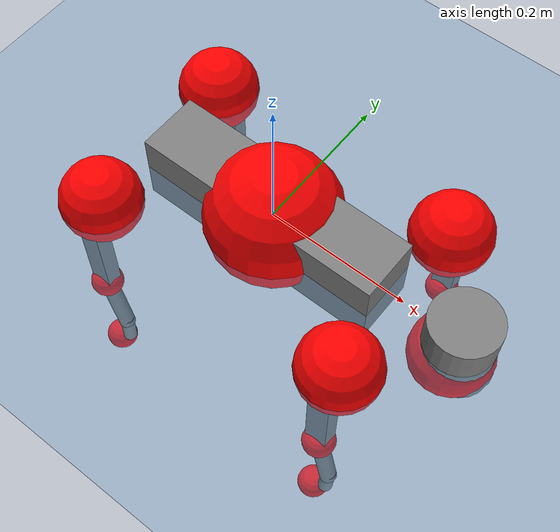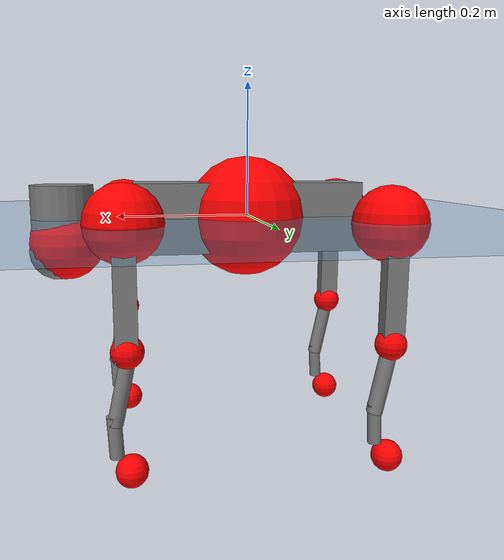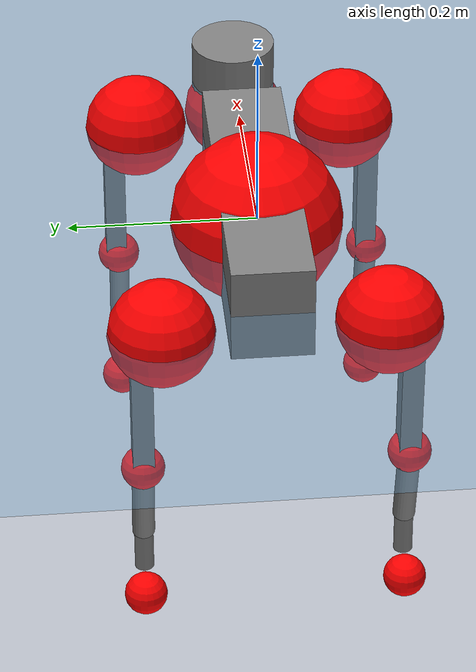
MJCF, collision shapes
<mujoco model="go2">
  <compiler angle="radian" assetdir="assets" balanceinertia="true" inertiafromgeom="false"/>

  <option timestep="0.005" density="1.2" viscosity="2e-05"/>

  <size nkey="1"/>

  <visual>
    <quality shadowsize="8192"/>
    <map shadowclip="0.5"/>
  </visual>

  <default>
    <default class="/">
      <geom contype="0" conaffinity="0" group="1" solref="-1000 -80"/>
      <site size="0.01 0.005 0.005" group="5"/>
      <general forcelimited="true" biastype="affine" gainprm="20" biasprm="0 -20 -0.5"/>
      <default class="go2">
        <joint armature="0.01" damping="0.01" frictionloss="0.2"/>
        <geom condim="1" margin="0.001"/>
        <default class="visual">
          <geom type="mesh" group="2"/>
        </default>
        <default class="collision">
          <geom group="3"/>
          <default class="foot">
            <geom size="0.022 0 0" condim="6" priority="1" friction="0.8 0.02 0.01" solimp="0.015 1 0.022"/>
          </default>
        </default>
        <default class="reward_collision_sphere">
          <geom group="5" rgba="1 0 0 1"/>
        </default>
      </default>
    </default>
  </default>

  <asset>
    <texture type="skybox" colorspace="auto" name="//unnamed_texture_0" builtin="gradient" rgb1="0.95 0.95 0.95" rgb2="0.95 0.95 0.95" width="100" height="600"/>
    <texture type="2d" colorspace="auto" name="texplane" builtin="checker" rgb1="0.345 0.575 0.748" rgb2="0.345 0.575 0.748" markrgb="1 1 1" width="512" height="512"/>
    <material name="MatPlane" class="/" texture="texplane" texuniform="true" texrepeat="2 2" specular="0.9"/>
    <material name="metal" class="/" rgba="0.9 0.95 0.95 1"/>
    <material name="black" class="/" rgba="0 0 0 1"/>
    <material name="white" class="/"/>
    <material name="gray" class="/" rgba="0.671705 0.692426 0.77427 1"/>
    <mesh name="base_0" class="/" file="base_0.obj"/>
    <mesh name="base_1" class="/" file="base_1.obj"/>
    <mesh name="base_2" class="/" file="base_2.obj"/>
    <mesh name="base_3" class="/" file="base_3.obj"/>
    <mesh name="base_4" class="/" file="base_4.obj"/>
    <mesh name="hip_0" class="/" file="hip_0.obj"/>
    <mesh name="hip_1" class="/" file="hip_1.obj"/>
    <mesh name="thigh_0" class="/" file="thigh_0.obj"/>
    <mesh name="thigh_1" class="/" file="thigh_1.obj"/>
    <mesh name="thigh_mirror_0" class="/" file="thigh_mirror_0.obj"/>
    <mesh name="thigh_mirror_1" class="/" file="thigh_mirror_1.obj"/>
    <mesh name="calf_0" class="/" file="calf_0.obj"/>
    <mesh name="calf_1" class="/" file="calf_1.obj"/>
    <mesh name="calf_mirror_0" class="/" file="calf_mirror_0.obj"/>
    <mesh name="calf_mirror_1" class="/" file="calf_mirror_1.obj"/>
    <mesh name="foot" class="/" file="foot.obj"/>
  </asset>

  <worldbody>
    <geom name="floor" class="/" size="100 100 0.125" type="plane" group="0" material="MatPlane"/>
    <light name="toplight_shadow" class="/" pos="0 0 5" dir="0.0990148 0.0990148 -0.990148" type="directional" ambient="0.04 0.04 0.04" diffuse="0.55 0.55 0.55" specular="0.12 0.12 0.12"/>
    <light name="toplight_fill" class="/" pos="0 0 5" dir="0.0990148 0.0990148 -0.990148" type="directional" castshadow="false" ambient="0.04 0.04 0.04" diffuse="0.3 0.3 0.3" specular="0.08 0.08 0.08"/>
    <body name="trunk" childclass="go2" pos="0.0022507 0.000319646 -0.0014397" quat="0.999999 -0.000728318 -0.000730276 -0.000810751">
      <inertial pos="0.0179077 0.00137633 -0.00349001" quat="0.00151119 0.712928 0.00294418 0.701229" mass="5.31" diaginertia="0.0943055 0.0894561 0.00858639"/>
      <joint name="//unnamed_joint_0" type="free" armature="0" damping="0" frictionloss="0"/>
      <geom name="//unnamed_geom_1" class="visual" material="black" mesh="base_0"/>
      <geom name="//unnamed_geom_2" class="visual" material="black" mesh="base_1"/>
      <geom name="//unnamed_geom_3" class="visual" material="black" mesh="base_2"/>
      <geom name="//unnamed_geom_4" class="visual" material="white" mesh="base_3"/>
      <geom name="//unnamed_geom_5" class="visual" material="gray" mesh="base_4"/>
      <geom name="trunk_1" class="collision" size="0.173246 0.0430581 0.0524986" type="box"/>
      <geom name="trunk_2" class="collision" size="0.0460514 0.0414463" pos="0.277542 0 0.00809136" type="cylinder"/>
      <geom name="trunk_3" class="collision" size="0.0432884" pos="0.285333 0 -0.0485481"/>
      <geom name="//unnamed_geom_9" class="reward_collision_sphere" size="0.0921029"/>
      <geom name="//unnamed_geom_10" class="reward_collision_sphere" size="0.0552617" pos="0.272673 0 -0.0364111"/>
      <site name="imu" pos="-0.022292 0.00963207 0.0477262" size="0.00921029"/>
      <camera name="track" pos="0 -1.96024 0" quat="0.707107 0.707107 0 0" mode="trackcom"/>
      <camera name="ego_camera" pos="0.303836 0 0.0364111" quat="-0.5 -0.5 0.5 0.5"/>
      <body name="FL_hip" pos="0.188111 0.0471445 0.00262884" quat="1 0.000261078 0.000396016 0.000209152">
        <inertial pos="-0.00592619 -0.00044904 0.0012361" quat="0.494354 0.499031 0.508165 0.498348" mass="0.514787" diaginertia="0.000787386 0.000545138 0.000166676"/>
        <joint name="FL_hip_joint" pos="0 0 0" axis="0.99994 0.0102284 -0.00383326" range="-1.00111 1.06762" armature="0.00907766" damping="0.0170175" frictionloss="0.181177"/>
        <geom name="//unnamed_geom_11" class="visual" material="metal" mesh="hip_0"/>
        <geom name="//unnamed_geom_12" class="visual" material="gray" mesh="hip_1"/>
        <geom name="//unnamed_geom_13" class="collision" size="0.0423673 0.0184206" pos="0 0.0784095 0" quat="0.707107 0.707107 0 0" type="cylinder"/>
        <geom name="//unnamed_geom_14" class="reward_collision_sphere" size="0.0552617" pos="0 0.0686084 0"/>
        <body name="FL_thigh" pos="0.000343951 0.0941851 0.00294284" quat="0.999999 0.000466536 0.000343526 0.00117287">
          <inertial pos="-0.00141554 -0.0240742 -0.029025" quat="0.829549 0.0848013 -0.0200935 0.551592" mass="0.871533" diaginertia="0.00513661 0.00508295 0.000302364"/>
          <joint name="FL_thigh_joint" pos="0 0 0" axis="-0.00351756 0.99999 0.00265684" range="-1.53769 3.48772" armature="0.00884113" damping="0.0140656" frictionloss="0.180706"/>
          <geom name="//unnamed_geom_15" class="visual" material="metal" mesh="thigh_0"/>
          <geom name="//unnamed_geom_16" class="visual" material="gray" mesh="thigh_1"/>
          <geom name="//unnamed_geom_17" class="collision" size="0.0980896 0.0112826 0.0156575" pos="0 0 -0.0861729" quat="0.707107 0 0.707107 0" type="box"/>
          <body name="FL_calf" pos="-0.000932826 -0.00283926 -0.172312" quat="0.999999 -0.00111367 -2.60805e-06 -0.000247504">
            <inertial pos="0.00340669 -0.000479798 -0.111305" quat="0.710375 0.00499137 -0.00313604 0.703798" mass="0.188251" diaginertia="0.00130348 0.0013997 1.88913e-05"/>
            <joint name="FL_calf_joint" pos="0 0 0" axis="0.0140935 0.999874 0.00734631" stiffness="0.0122538" range="-2.7765 -0.844649" armature="0.0099196" damping="0" frictionloss="0.200983"/>
            <geom name="//unnamed_geom_18" class="visual" material="gray" mesh="calf_0"/>
            <geom name="//unnamed_geom_19" class="visual" material="black" mesh="calf_1"/>
            <geom name="FL_calf0" class="collision" size="0.0110523 0.0552617" pos="0.00779065 0 -0.0485481" quat="0.994493 0 -0.104807 0" type="cylinder"/>
            <geom name="//unnamed_geom_21" class="collision" size="0.0101313 0.0299334" pos="0.0194766 0 -0.119752" quat="0.999688 0 0.0249974 0" type="cylinder"/>
            <geom name="//unnamed_geom_22" class="visual" pos="0 0 -0.172346" quat="1 0 0 0" material="black" mesh="foot"/>
            <geom name="FL_foot" class="foot" size="0.0180167" pos="-0.00194766 0 -0.172346"/>
            <geom name="//unnamed_geom_24" class="reward_collision_sphere" size="0.0230257"/>
            <geom name="//unnamed_geom_25" class="reward_collision_sphere" size="0.0230257" pos="-0.00194766 0 -0.172346"/>
            <site name="FL_foot" class="foot" pos="-0.00194766 0 -0.172346" size="0.00921029"/>
          </body>
        </body>
      </body>
      <body name="FR_hip" pos="0.187971 -0.0459235 -0.00177008" quat="0.999999 -0.000564608 -0.00108094 -0.00032836">
        <inertial pos="-0.00311321 -0.00462616 4.44756e-05" quat="0.500262 0.510626 0.503709 0.485052" mass="0.52434" diaginertia="0.000729113 0.000525806 0.000157358"/>
        <joint name="FR_hip_joint" pos="0 0 0" axis="0.999922 -0.00887657 0.00878446" range="-1.04379 1.05219" armature="0.0091292" damping="0.00856225" frictionloss="0.15872"/>
        <geom name="//unnamed_geom_26" class="visual" pos="0 1.48954e-09 6.38894e-08" quat="4.63268e-05 1 0 0" material="metal" mesh="hip_0"/>
        <geom name="//unnamed_geom_27" class="visual" pos="0 2.41472e-09 -1.58023e-07" quat="4.63268e-05 1 0 0" material="gray" mesh="hip_1"/>
        <geom name="//unnamed_geom_28" class="collision" size="0.0423673 0.0184206" pos="0 -0.0784095 0" quat="0.707107 0.707107 0 0" type="cylinder"/>
        <geom name="//unnamed_geom_29" class="reward_collision_sphere" size="0.0552617" pos="0 -0.0686084 0"/>
        <body name="FR_thigh" pos="0.000189227 -0.0957939 0.000582291" quat="1 3.27008e-05 1.94535e-06 5.69424e-05">
          <inertial pos="-0.00130122 0.0192702 -0.0257659" quat="0.542846 -0.0148749 0.088578 0.835015" mass="0.908535" diaginertia="0.00515281 0.00517538 0.000309383"/>
          <joint name="FR_thigh_joint" pos="0 0 0" axis="-0.00341087 -0.999985 0.00438556" range="-3.47033 1.62401" armature="0.00914521" damping="0.0117693" frictionloss="0.195647"/>
          <geom name="//unnamed_geom_30" class="visual" material="metal" mesh="thigh_mirror_0"/>
          <geom name="//unnamed_geom_31" class="visual" material="gray" mesh="thigh_mirror_1"/>
          <geom name="//unnamed_geom_32" class="collision" size="0.0980896 0.0112826 0.0156575" pos="0 0 -0.0861729" quat="0.707107 0 0.707107 0" type="box"/>
          <body name="FR_calf" pos="0.0011974 -0.0030597 -0.17282" quat="1 3.60662e-06 5.97994e-05 -8.19277e-05">
            <inertial pos="0.00629676 0.000409772 -0.114106" quat="0.696075 -0.010477 -0.00495961 0.717876" mass="0.18852" diaginertia="0.00130645 0.00132657 1.78549e-05"/>
            <joint name="FR_calf_joint" pos="0 0 0" axis="-0.0122135 -0.999913 0.00489725" range="0.831788 2.77403" armature="0.0091155" damping="0.0263412" frictionloss="0.176198"/>
            <geom name="//unnamed_geom_33" class="visual" material="gray" mesh="calf_mirror_0"/>
            <geom name="//unnamed_geom_34" class="visual" material="black" mesh="calf_mirror_1"/>
            <geom name="FR_calf0" class="collision" size="0.0119734 0.0552617" pos="0.00973832 0 -0.0485481" quat="0.995004 0 -0.0998334 0" type="cylinder"/>
            <geom name="//unnamed_geom_36" class="collision" size="0.0101313 0.0299334" pos="0.0194766 0 -0.119752" quat="0.999688 0 0.0249974 0" type="cylinder"/>
            <geom name="//unnamed_geom_37" class="visual" pos="0 0 -0.172346" quat="1 0 0 0" material="black" mesh="foot"/>
            <geom name="FR_foot" class="foot" size="0.0214536" pos="-0.00194766 0 -0.172346"/>
            <geom name="//unnamed_geom_39" class="reward_collision_sphere" size="0.0230257"/>
            <geom name="//unnamed_geom_40" class="reward_collision_sphere" size="0.0230257" pos="-0.00194766 0 -0.172346"/>
            <site name="FR_foot" class="foot" pos="-0.00194766 0 -0.172346" size="0.00921029"/>
          </body>
        </body>
      </body>
      <body name="RL_hip" pos="-0.188333 0.0458498 -0.00298321" quat="1 0.000114621 5.68355e-05 -0.000126565">
        <inertial pos="0.00571068 0.00469493 -0.00252097" quat="0.506509 0.497462 0.489332 0.506493" mass="0.540691" diaginertia="0.000759778 0.000529701 0.000170138"/>
        <joint name="RL_hip_joint" pos="0 0 0" axis="-0.999865 -0.00667332 0.0150021" stiffness="0.0117748" range="-1.02935 1.00104" armature="0.00802855" damping="0.00485075" frictionloss="0.20934"/>
        <geom name="//unnamed_geom_41" class="visual" pos="-1.43477e-09 0 -2.81247e-07" quat="4.63268e-05 0 1 0" material="metal" mesh="hip_0"/>
        <geom name="//unnamed_geom_42" class="visual" pos="-2.32593e-09 0 -2.49426e-07" quat="4.63268e-05 0 1 0" material="gray" mesh="hip_1"/>
        <geom name="//unnamed_geom_43" class="collision" size="0.0423673 0.0184206" pos="0 0.0784095 0" quat="0.707107 0.707107 0 0" type="cylinder"/>
        <geom name="//unnamed_geom_44" class="reward_collision_sphere" size="0.0552617" pos="0 0.0686084 0"/>
        <body name="RL_thigh" pos="7.61395e-05 0.0900393 0.00220644" quat="1 -2.6089e-05 0.000416197 -0.000152509">
          <inertial pos="-0.00352549 -0.0213234 -0.0274896" quat="0.828704 0.08434 -0.0187693 0.552977" mass="0.92344" diaginertia="0.00519681 0.0051863 0.000312511"/>
          <joint name="RL_thigh_joint" pos="0 0 0" axis="0.004364 0.999895 0.0138323" stiffness="0.0121207" range="-0.524956 4.54364" armature="0.010411" damping="0" frictionloss="0.183955"/>
          <geom name="//unnamed_geom_45" class="visual" material="metal" mesh="thigh_0"/>
          <geom name="//unnamed_geom_46" class="visual" material="gray" mesh="thigh_1"/>
          <geom name="//unnamed_geom_47" class="collision" size="0.0980896 0.0112826 0.0156575" pos="0 0 -0.0861729" quat="0.707107 0 0.707107 0" type="box"/>
          <body name="RL_calf" pos="0.000262643 0.000278647 -0.174994" quat="1 0.000211154 0.000173838 -0.000201559">
            <inertial pos="0.00569253 0.00191926 -0.114338" quat="0.710757 0.0101807 -0.00731489 0.703326" mass="0.188852" diaginertia="0.00127685 0.00132607 1.79376e-05"/>
            <joint name="RL_calf_joint" pos="0 0 0" axis="-0.00115377 0.999999 3.78886e-05" range="-2.72451 -0.810088" armature="0.010068" damping="0" frictionloss="0.206918"/>
            <geom name="//unnamed_geom_48" class="visual" material="gray" mesh="calf_0"/>
            <geom name="//unnamed_geom_49" class="visual" material="black" mesh="calf_1"/>
            <geom name="RL_calf0" class="collision" size="0.0119734 0.0552617" pos="0.00973832 0 -0.0485481" quat="0.995004 0 -0.0998334 0" type="cylinder"/>
            <geom name="//unnamed_geom_51" class="collision" size="0.0101313 0.0299334" pos="0.0194766 0 -0.119752" quat="0.999688 0 0.0249974 0" type="cylinder"/>
            <geom name="//unnamed_geom_52" class="visual" pos="0 0 -0.172346" quat="1 0 0 0" material="black" mesh="foot"/>
            <geom name="RL_foot" class="foot" size="0.0166587" pos="-0.00194766 0 -0.172346"/>
            <geom name="//unnamed_geom_54" class="reward_collision_sphere" size="0.0230257"/>
            <geom name="//unnamed_geom_55" class="reward_collision_sphere" size="0.0230257" pos="-0.00194766 0 -0.172346"/>
            <site name="RL_foot" class="foot" pos="-0.00194766 0 -0.172346" size="0.00921029"/>
          </body>
        </body>
      </body>
      <body name="RR_hip" pos="-0.187764 -0.0479355 -0.0020019" quat="0.999999 -0.000219218 -0.000999679 5.6323e-05">
        <inertial pos="0.0076885 0.00095767 -0.00274923" quat="0.500093 0.504036 0.487688 0.507952" mass="0.52888" diaginertia="0.000765701 0.000534224 0.000167003"/>
        <joint name="RR_hip_joint" pos="0 0 0" axis="-0.999923 0.00188706 -0.0122647" stiffness="0.00838444" range="-1.03336 1.02796" armature="0.00849557" damping="0.0103735" frictionloss="0.17479"/>
        <geom name="//unnamed_geom_56" class="visual" pos="1.43498e-09 1.48954e-09 -3.45137e-07" quat="2.14617e-09 4.63268e-05 4.63268e-05 -1" material="metal" mesh="hip_0"/>
        <geom name="//unnamed_geom_57" class="visual" pos="2.32539e-09 2.41472e-09 -9.14032e-08" quat="2.14617e-09 4.63268e-05 4.63268e-05 -1" material="gray" mesh="hip_1"/>
        <geom name="//unnamed_geom_58" class="collision" size="0.0423673 0.0184206" pos="0 -0.0784095 0" quat="0.707107 0.707107 0 0" type="cylinder"/>
        <geom name="//unnamed_geom_59" class="reward_collision_sphere" size="0.0552617" pos="0 -0.0686084 0"/>
        <body name="RR_thigh" pos="0.00102643 -0.0933588 -0.00182172" quat="1 2.19859e-05 -2.28629e-06 -2.39216e-05">
          <inertial pos="-0.00234039 0.0219844 -0.0265575" quat="0.551738 -0.0214841 0.0863358 0.829259" mass="0.867183" diaginertia="0.00527071 0.00543431 0.00030314"/>
          <joint name="RR_thigh_joint" pos="0 0 0" axis="-0.00687689 -0.999957 0.00619382" stiffness="0.00366855" range="-4.54206 0.579082" armature="0.00954582" damping="0.00946335" frictionloss="0.174993"/>
          <geom name="//unnamed_geom_60" class="visual" material="metal" mesh="thigh_mirror_0"/>
          <geom name="//unnamed_geom_61" class="visual" material="gray" mesh="thigh_mirror_1"/>
          <geom name="//unnamed_geom_62" class="collision" size="0.0980896 0.0112826 0.0156575" pos="0 0 -0.0861729" quat="0.707107 0 0.707107 0" type="box"/>
          <body name="RR_calf" pos="-0.000117073 -0.00154133 -0.171383" quat="1 1.42782e-05 -1.80758e-05 0.000134939">
            <inertial pos="0.00327841 -0.000430282 -0.115102" quat="0.7059 -0.00236959 0.0102017 0.708234" mass="0.190149" diaginertia="0.00132056 0.00133777 1.91491e-05"/>
            <joint name="RR_calf_joint" pos="0 0 0" axis="0.0180796 -0.999816 -0.00640681" stiffness="0.00178203" range="0.840023 2.72087" armature="0.00939934" damping="0.0246069" frictionloss="0.1877"/>
            <geom name="//unnamed_geom_63" class="visual" material="gray" mesh="calf_mirror_0"/>
            <geom name="//unnamed_geom_64" class="visual" material="black" mesh="calf_mirror_1"/>
            <geom name="RR_calf0" class="collision" size="0.0119734 0.0552617" pos="0.00973832 0 -0.0485481" quat="0.995004 0 -0.0998334 0" type="cylinder"/>
            <geom name="//unnamed_geom_66" class="collision" size="0.0101313 0.0299334" pos="0.0194766 0 -0.119752" quat="0.999688 0 0.0249974 0" type="cylinder"/>
            <geom name="//unnamed_geom_67" class="visual" pos="0 0 -0.172346" quat="1 0 0 0" material="black" mesh="foot"/>
            <geom name="RR_foot" class="foot" size="0.019968" pos="-0.00194766 0 -0.172346"/>
            <geom name="//unnamed_geom_69" class="reward_collision_sphere" size="0.0230257"/>
            <geom name="//unnamed_geom_70" class="reward_collision_sphere" size="0.0230257" pos="-0.00194766 0 -0.172346"/>
            <site name="RR_foot" class="foot" pos="-0.00194766 0 -0.172346" size="0.00921029"/>
          </body>
        </body>
      </body>
    </body>
  </worldbody>

  <contact>
    <pair class="/" geom1="floor" geom2="FL_foot" name="//unnamed_contact_0"/>
    <pair class="/" geom1="floor" geom2="FR_foot" name="//unnamed_contact_1"/>
    <pair class="/" geom1="floor" geom2="RL_foot" name="//unnamed_contact_2"/>
    <pair class="/" geom1="floor" geom2="RR_foot" name="//unnamed_contact_3"/>
  </contact>

  <actuator>
    <general name="FL_hip" class="/" joint="FL_hip_joint" forcerange="-21.7356 21.7356" gainprm="19.5078" biasprm="0 -19.5078 -0.431373"/>
    <general name="FL_thigh" class="/" joint="FL_thigh_joint" forcerange="-20.3825 20.3825" gainprm="19.5078" biasprm="0 -19.5078 -0.431373"/>
    <general name="FL_calf" class="/" joint="FL_calf_joint" forcerange="-43.346 43.346" gainprm="19.5078" biasprm="0 -19.5078 -0.431373"/>
    <general name="FR_hip" class="/" joint="FR_hip_joint" forcerange="-21.492 21.492" gainprm="19.5078" biasprm="0 -19.5078 -0.431373"/>
    <general name="FR_thigh" class="/" joint="FR_thigh_joint" forcerange="-23.2871 23.2871" gainprm="19.5078" biasprm="0 -19.5078 -0.431373"/>
    <general name="FR_calf" class="/" joint="FR_calf_joint" forcerange="-40.6287 40.6287" gainprm="19.5078" biasprm="0 -19.5078 -0.431373"/>
    <general name="RL_hip" class="/" joint="RL_hip_joint" forcerange="-23.8224 23.8224" gainprm="19.5078" biasprm="0 -19.5078 -0.431373"/>
    <general name="RL_thigh" class="/" joint="RL_thigh_joint" forcerange="-20.686 20.686" gainprm="19.5078" biasprm="0 -19.5078 -0.431373"/>
    <general name="RL_calf" class="/" joint="RL_calf_joint" forcerange="-37.7376 37.7376" gainprm="19.5078" biasprm="0 -19.5078 -0.431373"/>
    <general name="RR_hip" class="/" joint="RR_hip_joint" forcerange="-19.7808 19.7808" gainprm="19.5078" biasprm="0 -19.5078 -0.431373"/>
    <general name="RR_thigh" class="/" joint="RR_thigh_joint" forcerange="-23.978 23.978" gainprm="19.5078" biasprm="0 -19.5078 -0.431373"/>
    <general name="RR_calf" class="/" joint="RR_calf_joint" forcerange="-40.0335 40.0335" gainprm="19.5078" biasprm="0 -19.5078 -0.431373"/>
  </actuator>

  <sensor>
    <gyro site="imu" name="imu_angular_velocity"/>
    <velocimeter site="imu" name="imu_linear_velocity"/>
    <framelinvel objtype="site" objname="FL_foot" name="FL_foot_global_linear_velocity"/>
    <framelinvel objtype="site" objname="FR_foot" name="FR_foot_global_linear_velocity"/>
    <framelinvel objtype="site" objname="RL_foot" name="RL_foot_global_linear_velocity"/>
    <framelinvel objtype="site" objname="RR_foot" name="RR_foot_global_linear_velocity"/>
  </sensor>

  <keyframe>
    <key name="home" qpos="0 0 0.325 1 0 0 0 0.1 0.8 -1.5 -0.1 -0.8 1.5 -0.1 0.8 -1.5 0.1 -0.8 1.5"/>
  </keyframe>
</mujoco>
